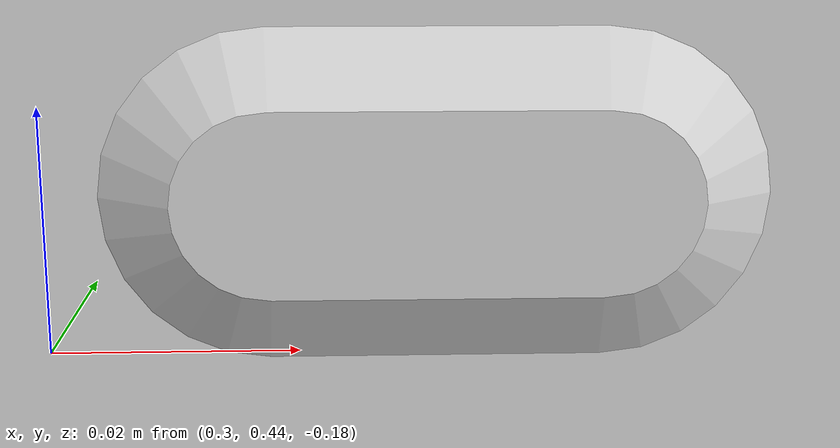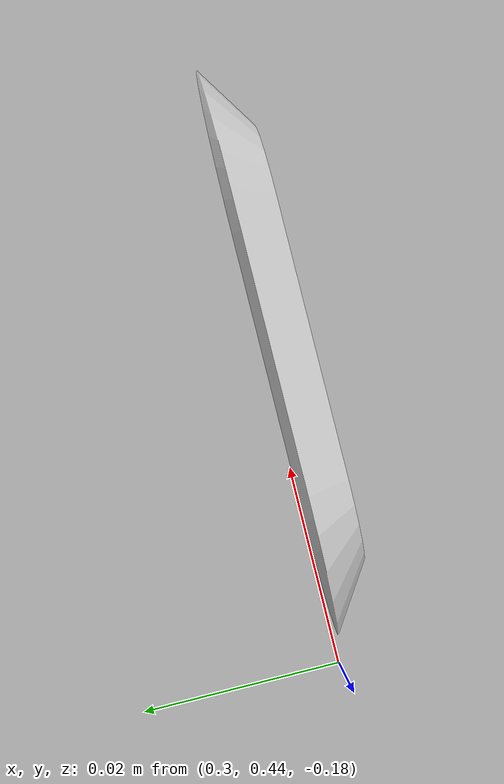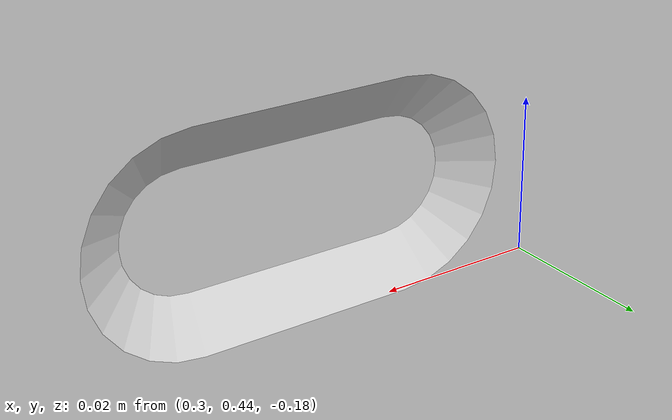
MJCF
<mujoco model="original-65">
  <default>
    <default class="visual">
      <geom group="2" type="mesh" contype="0" conaffinity="0"/>
    </default>
    <default class="collision">
      <geom group="3" type="mesh"/>
    </default>
  </default>
  <asset>
    <material name="material_0_0" specular="0.06666666666666667" shininess="0.03" rgba="0.8 0.8 0.8 1"/>
    <mesh file="original-65.obj"/>
  </asset>
  <worldbody>
    <body name="original-65">
      <geom material="material_0_0" mesh="original-65" class="visual"/>
      <geom mesh="original-65" class="collision"/>
    </body>
  </worldbody>
</mujoco>
